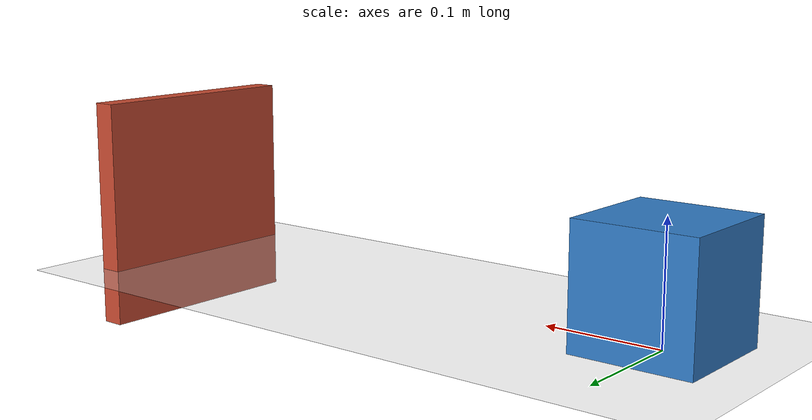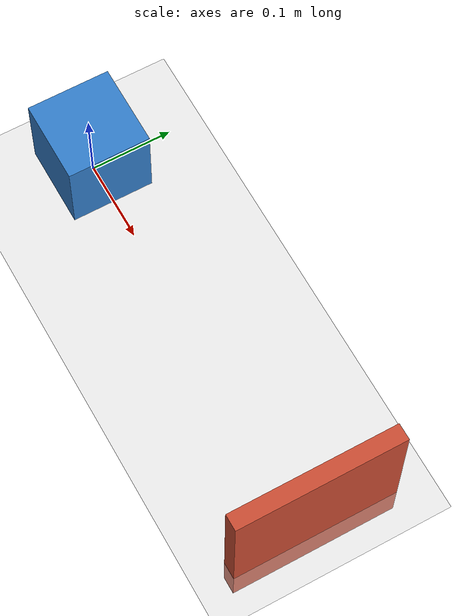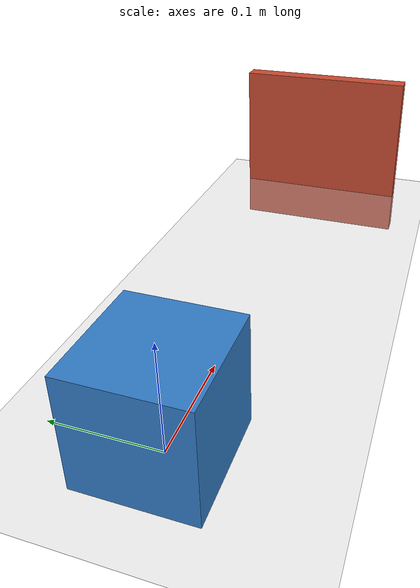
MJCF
<mujoco model="mass_spring_damper">
  <!-- 1-DOF mass on frictionless rail with wall contact for impedance control tutorial -->

  <!-- dt=0.001s; gravity disabled for pure horizontal dynamics; RK4 for accuracy -->
  <option timestep="0.001" gravity="0 0 0" integrator="RK4"/>

  <default>
    <!-- Frictionless contacts: condim=3 gives normal + 2 tangential directions -->
    <geom condim="3" friction="0 0 0"/>
  </default>

  <worldbody>
    <!-- Ground plane: visual reference only -->
    <geom name="floor" type="plane" size="2 2 0.1" rgba="0.8 0.8 0.8 1"/>

    <!-- Sliding mass: 1 kg box on frictionless rail along X axis -->
    <body name="mass" pos="0 0 0.05">
      <!-- Prismatic joint: slides along X, range +/-1m
           damping=0.1 is small structural damping (NOT the impedance B) -->
      <joint name="slide" type="slide" axis="1 0 0"
             range="-1 1" damping="0.1"/>
      <!-- 1 kg, 10cm cube -->
      <geom name="mass_geom" type="box" size="0.05 0.05 0.05"
            mass="1.0" rgba="0.2 0.5 0.8 1"/>
    </body>

    <!-- Wall: static obstacle at x=0.5m for contact interaction -->
    <body name="wall" pos="0.5 0 0.05">
      <!-- Thin wall (2cm thick, 20cm wide/tall) with soft contact parameters
           solimp: contact compliance; solref: 2ms time constant, critically damped -->
      <geom name="wall_geom" type="box" size="0.01 0.1 0.1"
            rgba="0.8 0.3 0.2 1"
            solimp="0.99 0.999 0.001" solref="0.002 1"/>
    </body>
  </worldbody>

  <actuator>
    <!-- Motor: ctrl[0] = force in Newtons applied to slide joint
         gear=1 means no scaling; NOT a position servo -->
    <motor name="force_motor" joint="slide" gear="1" ctrllimited="false"/>
  </actuator>
</mujoco>
